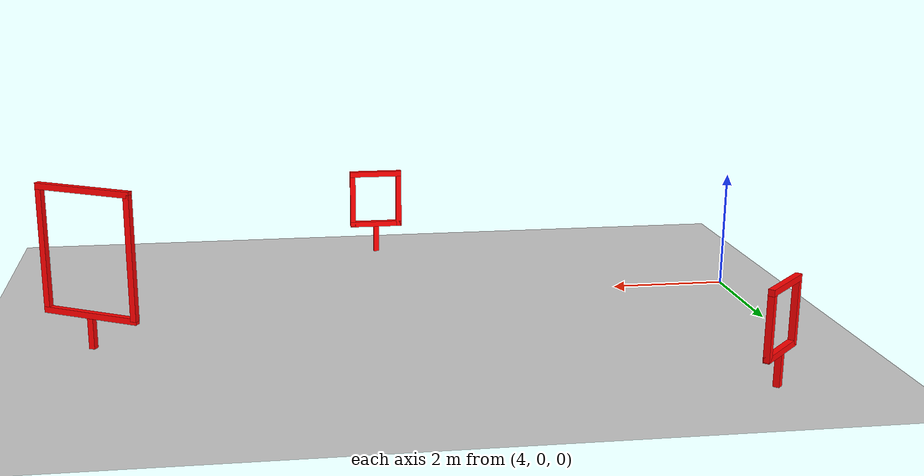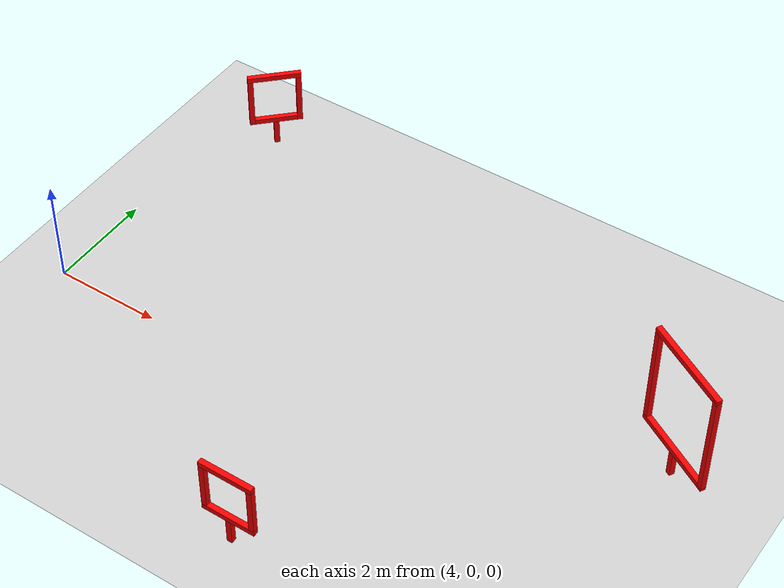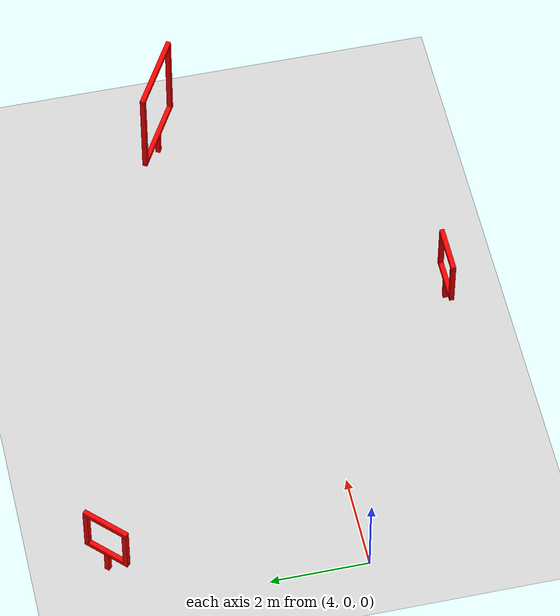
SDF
<?xml version="1.0" encoding="UTF-8"?>
<sdf version="1.9">
  <world name="puertas_rojas">
    <physics type="ode">
      <max_step_size>0.004</max_step_size>
      <real_time_factor>1.0</real_time_factor>
      <real_time_update_rate>250</real_time_update_rate>
    </physics>
    <gravity>0 0 -9.8</gravity>
    <magnetic_field>6e-06 2.3e-05 -4.2e-05</magnetic_field>
    <atmosphere type="adiabatic"/>
    <scene>
      <grid>false</grid>
      <ambient>0.4 0.4 0.4 1</ambient>
      <background>0.7 0.7 0.7 1</background>
      <shadows>true</shadows>
    </scene>

    <model name="ground_plane">
      <static>true</static>
      <link name="link">
        <collision name="collision">
          <geometry>
            <plane>
              <normal>0 0 1</normal>
              <size>1 1</size> </plane>
          </geometry>
          <surface>
            <friction><ode/></friction>
            <bounce/>
            <contact/>
          </surface>
        </collision>
        <visual name="visual">
          <geometry>
            <plane>
              <normal>0 0 1</normal>
              <size>500 500</size> </plane>
          </geometry>
          <material>
            <ambient>0.8 0.8 0.8 1</ambient>
            <diffuse>0.8 0.8 0.8 1</diffuse>
            <specular>0.8 0.8 0.8 1</specular>
          </material>
        </visual>
        <enable_wind>false</enable_wind>
      </link>
      <pose>0 0 0 0 0 0</pose>
    </model>

    <model name="puerta_1">
      <static>true</static>
      <link name="soporte_1">
        <pose>0 0 0.25 0 0 0</pose>
        <collision name="col_soporte_1"><geometry><box><size>0.1 0.1 0.5</size></box></geometry></collision>
        <visual name="vis_soporte_1"><geometry><box><size>0.1 0.1 0.5</size></box></geometry><material><ambient>1 0 0 1</ambient><diffuse>1 0 0 1</diffuse></material></visual>
      </link>
      <link name="barra_inferior_1">
        <pose>0 0 0.55 0 0 0</pose>
        <collision name="col_inferior_1"><geometry><box><size>1.0 0.1 0.1</size></box></geometry></collision>
        <visual name="vis_inferior_1"><geometry><box><size>1.0 0.1 0.1</size></box></geometry><material><ambient>1 0 0 1</ambient><diffuse>1 0 0 1</diffuse></material></visual>
      </link>
      <link name="barra_superior_1">
        <pose>0 0 1.55 0 0 0</pose>
        <collision name="col_superior_1"><geometry><box><size>1.0 0.1 0.1</size></box></geometry></collision>
        <visual name="vis_superior_1"><geometry><box><size>1.0 0.1 0.1</size></box></geometry><material><ambient>1 0 0 1</ambient><diffuse>1 0 0 1</diffuse></material></visual>
      </link>
      <link name="barra_izquierda_1">
        <pose>-0.45 0 1.0 0 0 0</pose>
        <collision name="col_izquierda_1"><geometry><box><size>0.1 0.1 1.0</size></box></geometry></collision>
        <visual name="vis_izquierda_1"><geometry><box><size>0.1 0.1 1.0</size></box></geometry><material><ambient>1 0 0 1</ambient><diffuse>1 0 0 1</diffuse></material></visual>
      </link>
      <link name="barra_derecha_1">
        <pose>0.45 0 1.0 0 0 0</pose>
        <collision name="col_derecha_1"><geometry><box><size>0.1 0.1 1.0</size></box></geometry></collision>
        <visual name="vis_derecha_1"><geometry><box><size>0.1 0.1 1.0</size></box></geometry><material><ambient>1 0 0 1</ambient><diffuse>1 0 0 1</diffuse></material></visual>
      </link>
      <joint name="joint_soporte_inferior_1" type="fixed"><parent>soporte_1</parent><child>barra_inferior_1</child><pose>0 0 0.3 0 0 0</pose></joint>
      <joint name="joint_inferior_izquierda_1" type="fixed"><parent>barra_inferior_1</parent><child>barra_izquierda_1</child><pose>-0.5 0 0 0 0 0</pose></joint>
      <joint name="joint_inferior_derecha_1" type="fixed"><parent>barra_inferior_1</parent><child>barra_derecha_1</child><pose>0.5 0 0 0 0 0</pose></joint>
      <joint name="joint_inferior_superior_1" type="fixed"><parent>barra_inferior_1</parent><child>barra_superior_1</child><pose>0 0 1 0 0 0</pose></joint>
      <pose>5 5 0 0 0 0.7854</pose>
    </model>

    <model name="puerta_2">
      <static>true</static>
      <link name="soporte_2">
        <pose>0 0 0.25 0 0 0</pose>
        <collision name="col_soporte_2"><geometry><box><size>0.1 0.1 0.5</size></box></geometry></collision>
        <visual name="vis_soporte_2"><geometry><box><size>0.1 0.1 0.5</size></box></geometry><material><ambient>1 0 0 1</ambient><diffuse>1 0 0 1</diffuse></material></visual>
      </link>
      <link name="barra_inferior_2">
        <pose>0 0 0.55 0 0 0</pose>
        <collision name="col_inferior_2"><geometry><box><size>1.0 0.1 0.1</size></box></geometry></collision>
        <visual name="vis_inferior_2"><geometry><box><size>1.0 0.1 0.1</size></box></geometry><material><ambient>1 0 0 1</ambient><diffuse>1 0 0 1</diffuse></material></visual>
      </link>
      <link name="barra_superior_2">
        <pose>0 0 1.55 0 0 0</pose>
        <collision name="col_superior_2"><geometry><box><size>1.0 0.1 0.1</size></box></geometry></collision>
        <visual name="vis_superior_2"><geometry><box><size>1.0 0.1 0.1</size></box></geometry><material><ambient>1 0 0 1</ambient><diffuse>1 0 0 1</diffuse></material></visual>
      </link>
      <link name="barra_izquierda_2">
        <pose>-0.45 0 1.0 0 0 0</pose>
        <collision name="col_izquierda_2"><geometry><box><size>0.1 0.1 1.0</size></box></geometry></collision>
        <visual name="vis_izquierda_2"><geometry><box><size>0.1 0.1 1.0</size></box></geometry><material><ambient>1 0 0 1</ambient><diffuse>1 0 0 1</diffuse></material></visual>
      </link>
      <link name="barra_derecha_2">
        <pose>0.45 0 1.0 0 0 0</pose>
        <collision name="col_derecha_2"><geometry><box><size>0.1 0.1 1.0</size></box></geometry></collision>
        <visual name="vis_derecha_2"><geometry><box><size>0.1 0.1 1.0</size></box></geometry><material><ambient>1 0 0 1</ambient><diffuse>1 0 0 1</diffuse></material></visual>
      </link>
      <joint name="joint_soporte_inferior_2" type="fixed"><parent>soporte_2</parent><child>barra_inferior_2</child><pose>0 0 0.3 0 0 0</pose></joint>
      <joint name="joint_inferior_izquierda_2" type="fixed"><parent>barra_inferior_2</parent><child>barra_izquierda_2</child><pose>-0.5 0 0 0 0 0</pose></joint>
      <joint name="joint_inferior_derecha_2" type="fixed"><parent>barra_inferior_2</parent><child>barra_derecha_2</child><pose>0.5 0 0 0 0 0</pose></joint>
      <joint name="joint_inferior_superior_2" type="fixed"><parent>barra_inferior_2</parent><child>barra_superior_2</child><pose>0 0 1 0 0 0</pose></joint>
       <pose>10 -3 0 0 0 0</pose>
    </model>

    <model name="puerta_grande_1">
       <static>true</static>
       <link name="soporte_g1">
         <pose>0 0 0.25 0 0 0</pose> <collision name="col_soporte_g1"><geometry><box><size>0.1 0.1 0.5</size></box></geometry></collision>
         <visual name="vis_soporte_g1"><geometry><box><size>0.1 0.1 0.5</size></box></geometry><material><ambient>1 0 0 1</ambient><diffuse>1 0 0 1</diffuse></material></visual>
       </link>
       <link name="barra_inferior_g1">
         <pose>0 0 0.55 0 0 0</pose> <collision name="col_inferior_g1"><geometry><box><size>1.7 0.1 0.1</size></box></geometry></collision> <visual name="vis_inferior_g1"><geometry><box><size>1.7 0.1 0.1</size></box></geometry><material><ambient>1 0 0 1</ambient><diffuse>1 0 0 1</diffuse></material></visual>
       </link>
       <link name="barra_superior_g1">
         <pose>0 0 2.55 0 0 0</pose> <collision name="col_superior_g1"><geometry><box><size>1.7 0.1 0.1</size></box></geometry></collision> <visual name="vis_superior_g1"><geometry><box><size>1.7 0.1 0.1</size></box></geometry><material><ambient>1 0 0 1</ambient><diffuse>1 0 0 1</diffuse></material></visual>
       </link>
       <link name="barra_izquierda_g1">
         <pose>-0.8 0 1.55 0 0 0</pose> <collision name="col_izquierda_g1"><geometry><box><size>0.1 0.1 2.0</size></box></geometry></collision> <visual name="vis_izquierda_g1"><geometry><box><size>0.1 0.1 2.0</size></box></geometry><material><ambient>1 0 0 1</ambient><diffuse>1 0 0 1</diffuse></material></visual>
       </link>
       <link name="barra_derecha_g1">
         <pose>0.8 0 1.55 0 0 0</pose> <collision name="col_derecha_g1"><geometry><box><size>0.1 0.1 2.0</size></box></geometry></collision> <visual name="vis_derecha_g1"><geometry><box><size>0.1 0.1 2.0</size></box></geometry><material><ambient>1 0 0 1</ambient><diffuse>1 0 0 1</diffuse></material></visual>
       </link>
       <pose>15 2 0 0 0 -0.5236</pose>
    </model>

    <light name="sunUTC" type="directional">
      <pose>0 0 500 0 0 0</pose>
      <cast_shadows>true</cast_shadows>
      <intensity>1</intensity>
      <direction>0.001 0.625 -0.78</direction>
      <diffuse>0.904 0.904 0.904 1</diffuse>
      <specular>0.271 0.271 0.271 1</specular>
      <attenuation>
        <range>2000</range>
        <linear>0</linear>
        <constant>1</constant>
        <quadratic>0</quadratic>
      </attenuation>
      <spot>
        <inner_angle>0</inner_angle>
        <outer_angle>0</outer_angle>
        <falloff>0</falloff>
      </spot>
    </light>

    <spherical_coordinates>
      <surface_model>EARTH_WGS84</surface_model>
      <world_frame_orientation>ENU</world_frame_orientation>
      <latitude_deg>47.397971057728974</latitude_deg>
      <longitude_deg> 8.546163739800146</longitude_deg>
      <elevation>0</elevation>
    </spherical_coordinates>
  </world>
</sdf>
